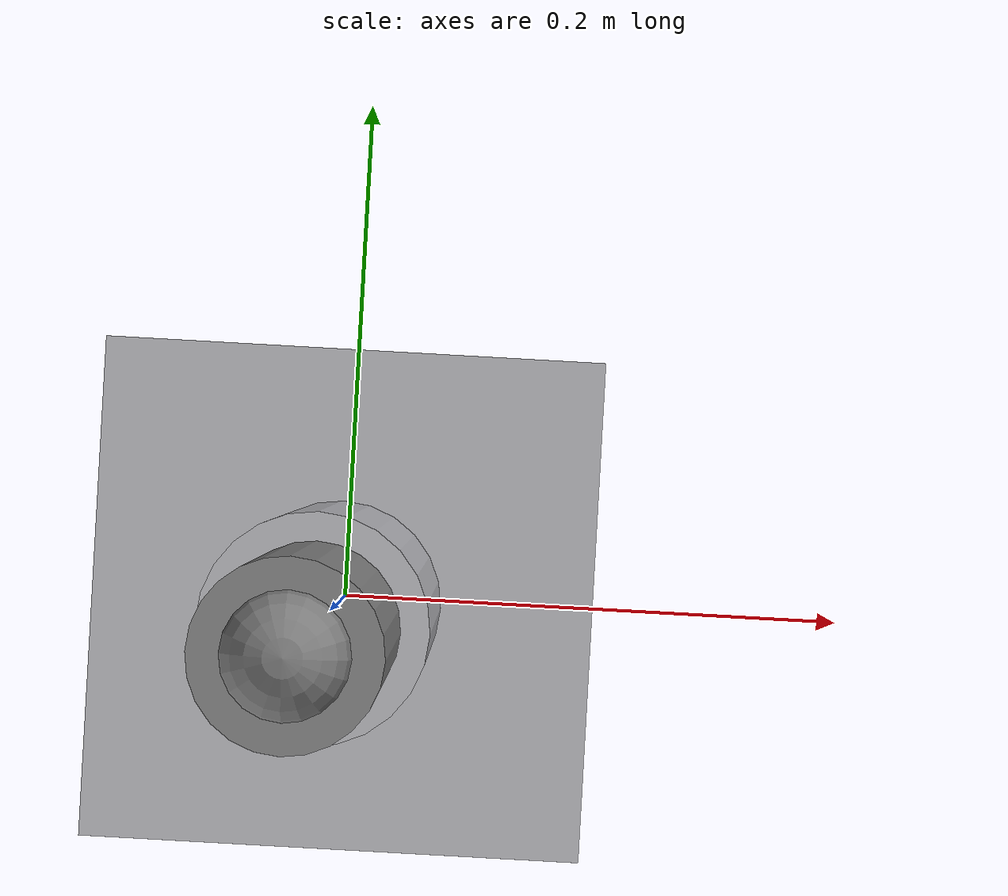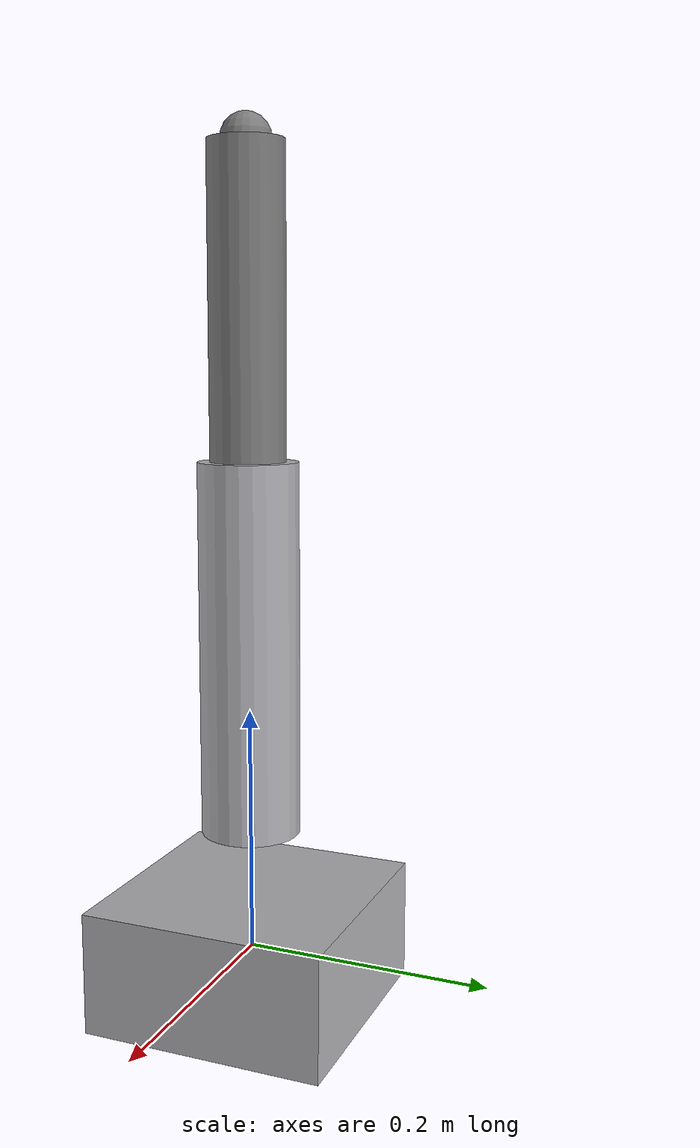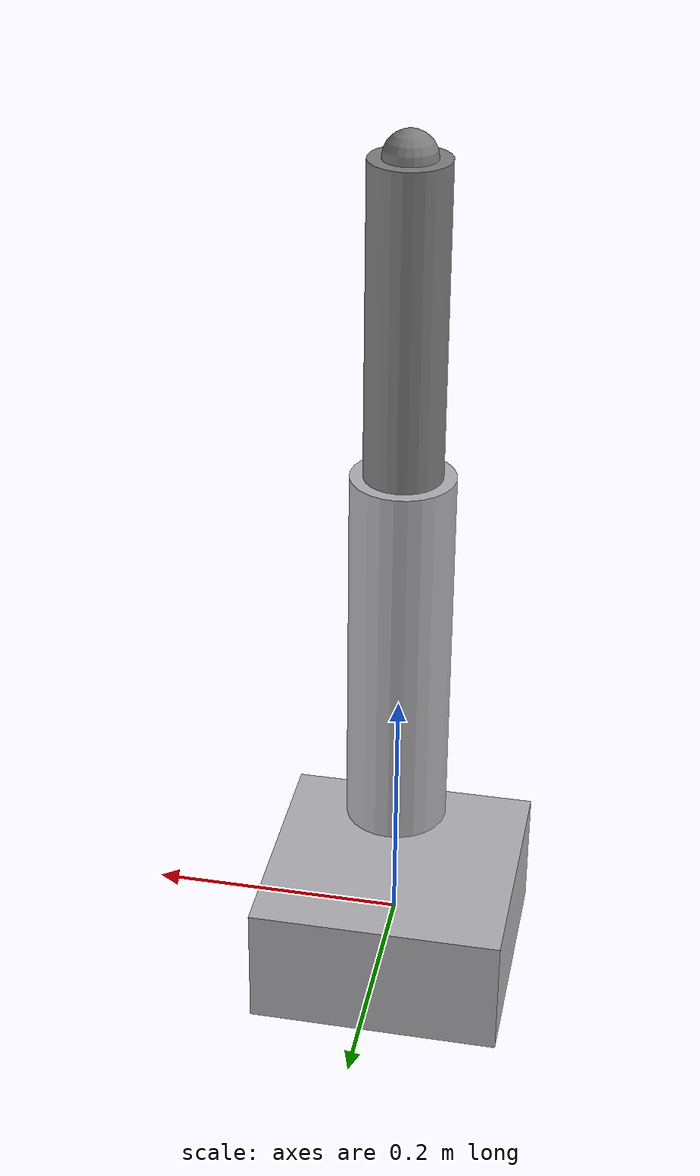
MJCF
<?xml version="1.0"?>
<mujoco model="simple_arm_mjcf">
  <asset>
    <material name="steel" rgba="0.7 0.7 0.72 1.0"/>
  </asset>
  <worldbody>
    <body name="base_link" pos="0 0 0">
      <inertial pos="0 0 0.05" mass="5.0" diaginertia="0.01 0.01 0.005"/>
      <geom type="box" size="0.1 0.1 0.05" material="steel"/>

      <body name="upper_arm" pos="0 0 0.1">
        <joint name="shoulder_pan" type="hinge" axis="0 0 1" range="-3.14 3.14"/>
        <inertial pos="0 0 0.15" mass="2.0" diaginertia="0.02 0.02 0.001"/>
        <geom type="cylinder" pos="0 0 0.15" size="0.04 0.15" material="steel"/>

        <body name="forearm" pos="0 0 0.3">
          <joint name="elbow" type="hinge" axis="0 1 0" range="-2.0 2.0"/>
          <inertial pos="0 0 0.12" mass="1.0" diaginertia="0.01 0.01 0.0005"/>
          <geom type="cylinder" pos="0 0 0.12" size="0.03 0.12"/>

          <body name="end_effector" pos="0 0 0.24">
            <inertial mass="0.1" diaginertia="0.0001 0.0001 0.0001"/>
            <geom type="sphere" size="0.02"/>
          </body>
        </body>
      </body>
    </body>
  </worldbody>
</mujoco>
